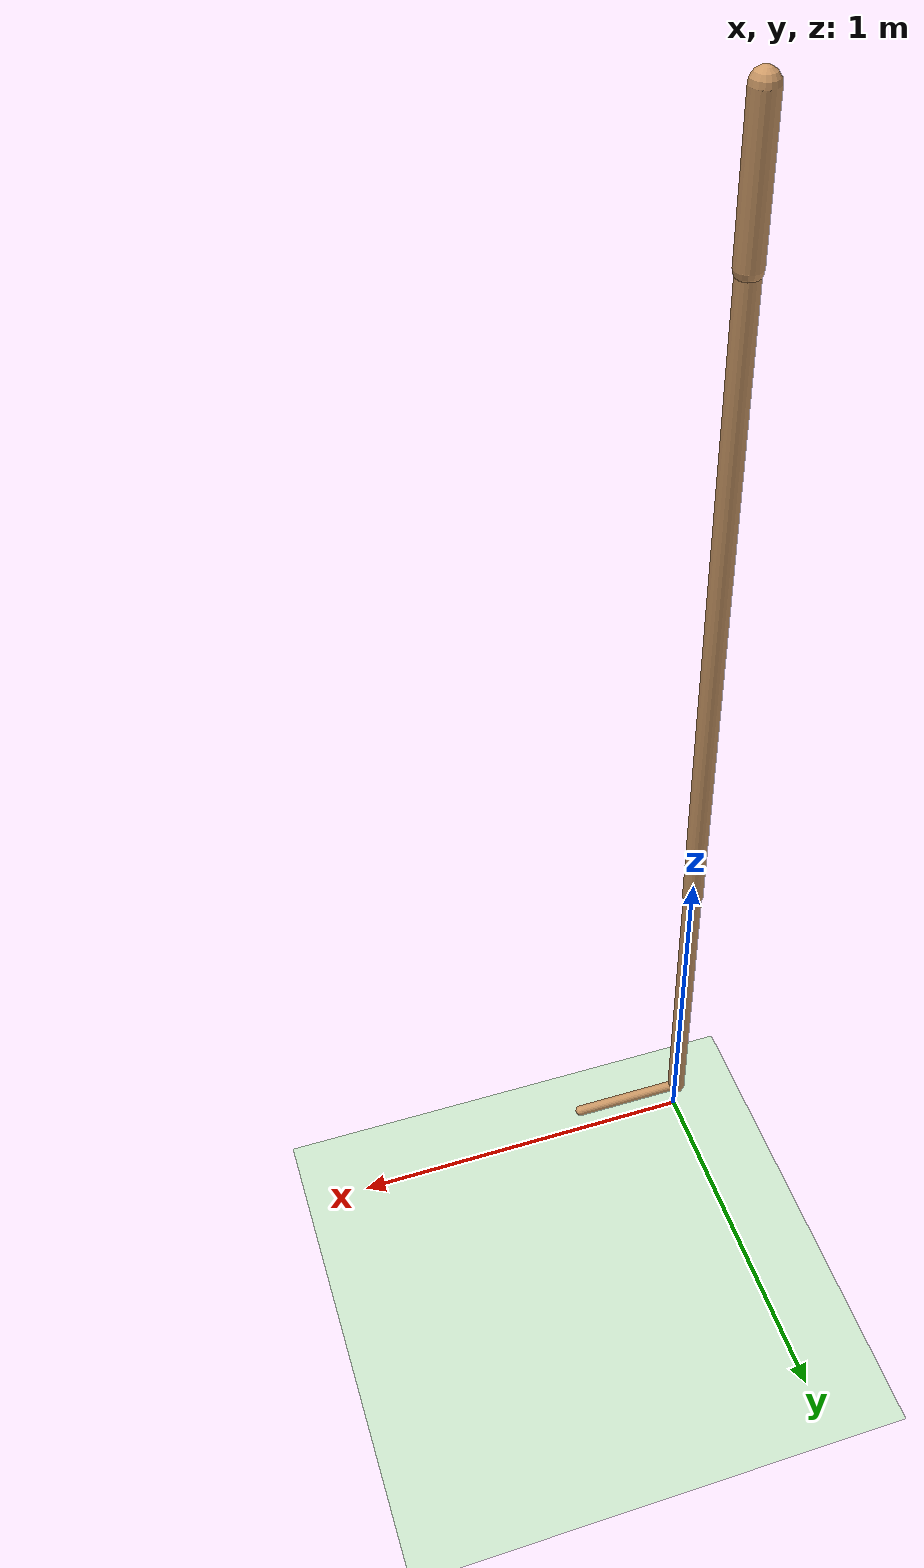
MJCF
<mujoco model="walker2d">
  <compiler angle="degree" inertiafromgeom="true" />
  <default>
    <joint armature="0.01" damping=".1" limited="true" />
    <geom conaffinity="0" condim="3" contype="1" density="1000" friction=".7 .1 .1" rgba="0.8 0.6 .4 1" />
  </default>
  <option integrator="RK4" timestep="0.002" />
  <worldbody>
    <light cutoff="100" diffuse="1 1 1" dir="-0 0 -1.3" directional="true" exponent="1" pos="0 0 1.3" specular=".1 .1 .1" />
    <geom conaffinity="1" condim="3" name="floor" pos="0 0 0" rgba="0.8 0.9 0.8 1" size="40 40 40" type="plane" material="MatPlane" />
    <body name="torso" pos="0 0 2.9262800574302674">
      <camera name="track" mode="trackcom" pos="0 -5 -1.25" xyaxes="1 0 0 0 0 1" />
      <joint armature="0" axis="1 0 0" damping="0" limited="false" name="rootx" pos="0 0 -1.25" stiffness="0" type="slide" />
      <joint armature="0" axis="0 0 1" damping="0" limited="false" name="rootz" pos="0 0 -1.25" ref="1.25" stiffness="0" type="slide" />
      <joint armature="0" axis="0 1 0" damping="0" limited="false" name="rooty" pos="0 0 0" stiffness="0" type="hinge" />
      <geom friction="0.9" name="torso_geom" size="0.03291606158018112 0.17254972457885742" type="capsule" />
      <body name="thigh" pos="0 0 -0.17254972457885742">
        <joint axis="0 -1 0" name="thigh_joint" pos="0 0 0" range="-150 0" type="hinge" />
        <site name="torso_thigh_site" pos="0 0 0" size="0.01" type="sphere" rgba="1 0 0 0.5" />
        <geom friction="0.9" pos="0 0 -0.8965736627578735" name="thigh_geom" size="0.02858583629131317 0.8965736627578735" type="capsule" />
        <body name="leg" pos="0 0 -2.2234388291835785">
          <joint axis="0 -1 0" name="leg_joint" pos="0 0 0.4302915036678314" range="-150 0" type="hinge" />
          <site name="thigh_leg_site" pos="0 0 0.25" size="0.01" type="sphere" rgba="1 0 0 0.5" />
          <geom friction="0.9" name="leg_geom" size="0.025538530200719833 0.4302915036678314" type="capsule" />
          <body name="foot" pos="0.314965158700943 0 -0.5302915036678314">
            <joint axis="0 -1 0" name="foot_joint" pos="-0.314965158700943 0 0.1" range="-45 45" type="hinge" />
            <site name="leg_foot_site" pos="-0.2 0 0.1" size="0.01" type="sphere" rgba="1 0 0 0.5" />
            <geom friction="0.9" pos="-0.1574825793504715 0 0.1" quat="0.70710678118654757 0 -0.70710678118654746 0" name="foot_geom" size="0.015174354426562786 0.1574825793504715" type="capsule" />
          </body>
        </body>
      </body>

      <body name="thigh_left" pos="0 0 -0.17254972457885742">
        <joint axis="0 -1 0" name="thigh_left_joint" pos="0 0 0" range="-150 0" type="hinge" />
        <site name="torso_thigh_left_site" pos="0 0 0" size="0.01" type="sphere" rgba="1 0 0 0.5" />
        <geom friction="0.9" name="thigh_left_geom" rgba=".7 .3 .6 1" size="0.02858583629131317 0.8965736627578735" pos="0 0 -0.8965736627578735" type="capsule" />
        <body name="leg_left" pos="0 0 -2.2234388291835785">
          <joint axis="0 -1 0" name="leg_left_joint" pos="0 0 0.4302915036678314" range="-150 0" type="hinge" />
          <site name="thigh_leg_left_site" pos="0 0 0.25" size="0.01" type="sphere" rgba="1 0 0 0.5" />
          <geom friction="0.9" name="leg_left_geom" rgba=".7 .3 .6 1" size="0.025538530200719833 0.4302915036678314" type="capsule" />
          <body name="foot_left" pos="0.314965158700943 0 -0.5302915036678314">
            <joint axis="0 -1 0" name="foot_left_joint" pos="-0.314965158700943 0 0.1" range="-45 45" type="hinge" />
            <site name="leg_foot_left_site" pos="-0.2 0 0.1" size="0.01" type="sphere" rgba="1 0 0 0.5" />
            <geom friction="1.9" name="foot_left_geom" rgba=".7 .3 .6 1" size="0.015174354426562786 0.1574825793504715" pos="-0.1574825793504715 0 0.1" type="capsule" quat="0.70710678118654757 0 -0.70710678118654746 0" />
          </body>
        </body>
      </body>
    </body>
  </worldbody>
  <actuator>

    <motor ctrllimited="true" ctrlrange="-1.0 1.0" gear="130.24625799537887" joint="thigh_joint" />
    <motor ctrllimited="true" ctrlrange="-1.0 1.0" gear="70.1608072947068" joint="leg_joint" />
    <motor ctrllimited="true" ctrlrange="-1.0 1.0" gear="10.072805912408556" joint="foot_joint" />
    <motor ctrllimited="true" ctrlrange="-1.0 1.0" gear="130.24625799537887" joint="thigh_left_joint" />
    <motor ctrllimited="true" ctrlrange="-1.0 1.0" gear="70.1608072947068" joint="leg_left_joint" />
    <motor ctrllimited="true" ctrlrange="-1.0 1.0" gear="10.072805912408556" joint="foot_left_joint" />

  </actuator>
    <asset>
        <texture type="skybox" builtin="gradient" rgb1=".4 .5 .6" rgb2="0 0 0" width="100" height="100" />
        <texture builtin="flat" height="1278" mark="cross" markrgb="1 1 1" name="texgeom" random="0.01" rgb1="0.8 0.6 0.4" rgb2="0.8 0.6 0.4" type="cube" width="127" />
        <texture builtin="checker" height="100" name="texplane" rgb1="0 0 0" rgb2="0.8 0.8 0.8" type="2d" width="100" />
        <material name="MatPlane" reflectance="0.5" shininess="1" specular="1" texrepeat="60 60" texture="texplane" />
        <material name="geom" texture="texgeom" texuniform="true" />
    </asset>

  <sensor>
    <force site="torso_thigh_site" name="torso_thigh_sensor" />
    <force site="thigh_leg_site" name="thigh_leg_sensor" />
    <force site="leg_foot_site" name="leg_foot_sensor" />
    <force site="torso_thigh_left_site" name="torso_thigh_left_sensor" />
    <force site="thigh_leg_left_site" name="thigh_leg_left_sensor" />
    <force site="leg_foot_left_site" name="leg_foot_left_sensor" />
  </sensor>
</mujoco>
